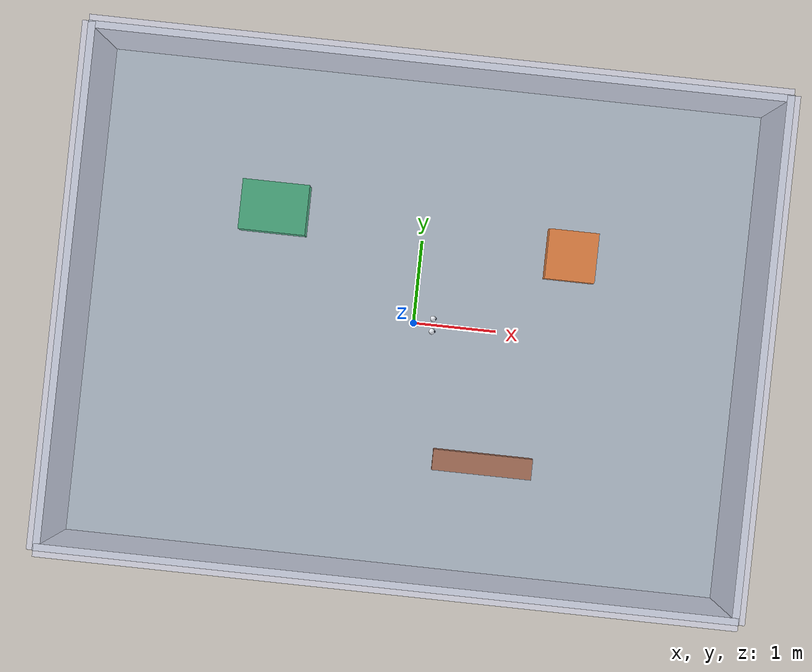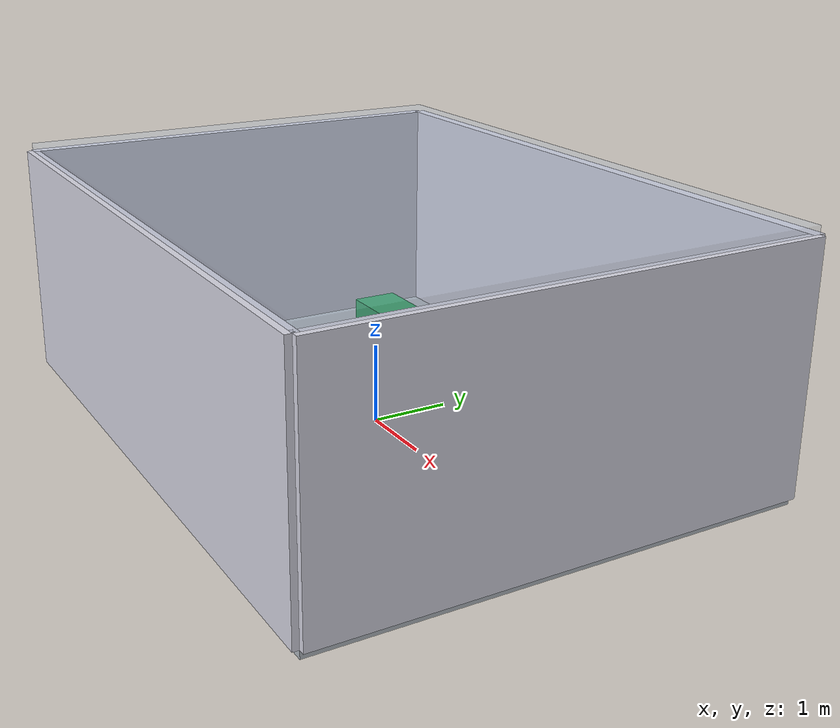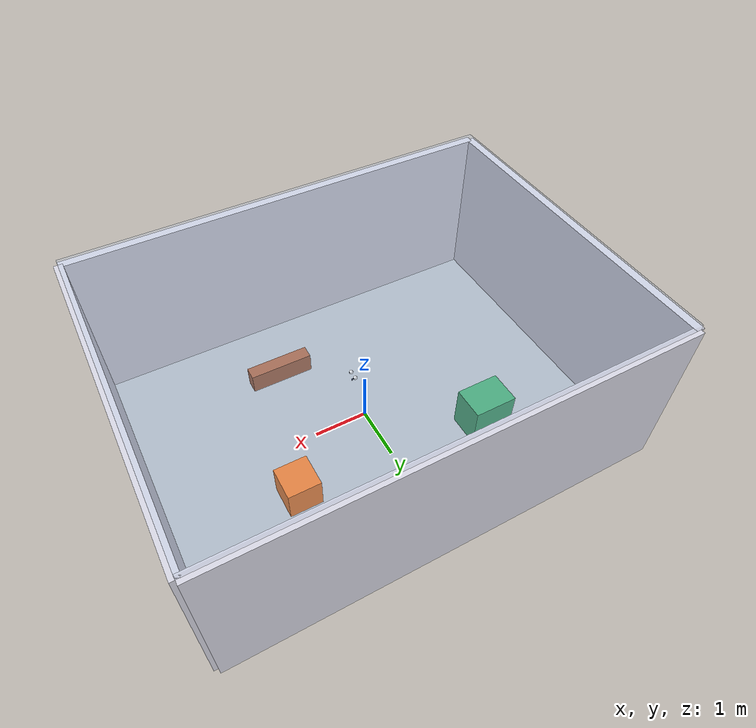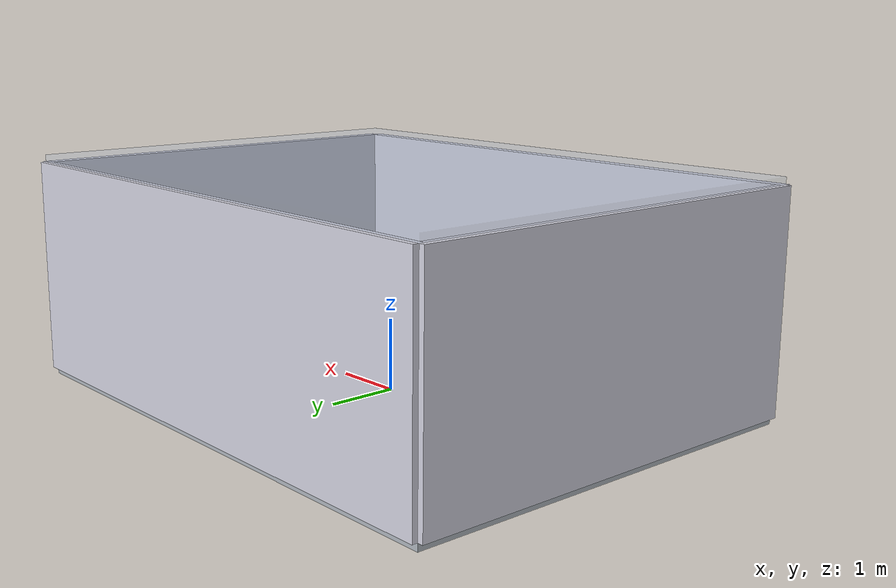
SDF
<?xml version='1.0' encoding='utf-8'?>
<sdf version="1.8">
  <world name="ghost_room">
    <physics name="default" type="ignored">
      <max_step_size>0.002</max_step_size>
      <real_time_factor>1</real_time_factor>
    </physics>
    <plugin filename="ignition-gazebo-physics-system" name="ignition::gazebo::systems::Physics" />
    <plugin filename="ignition-gazebo-user-commands-system" name="ignition::gazebo::systems::UserCommands" />
    <plugin filename="ignition-gazebo-scene-broadcaster-system" name="ignition::gazebo::systems::SceneBroadcaster" />
    <light type="directional" name="sun">
      <pose>0 0 8 0 0 0</pose>
      <diffuse>0.9 0.9 0.9 1</diffuse>
      <direction>-0.5 -0.2 -1</direction>
      <cast_shadows>false</cast_shadows>
    </light>
    <scene>
      <ambient>0.5 0.5 0.5 1</ambient>
      <background>0.12 0.16 0.22 1</background>
    </scene>
    <model name="floor">
      <static>true</static>
      <pose>0 0 -0.05 0 0 0</pose>
      <link name="link">
        <collision name="collision">
          <geometry>
            <box>
              <size>8 6 0.1</size>
            </box>
          </geometry>
        </collision>
        <visual name="visual">
          <geometry>
            <box>
              <size>8 6 0.1</size>
            </box>
          </geometry>
          <material>
            <ambient>0.7 0.73 0.76 1</ambient>
            <diffuse>0.7 0.73 0.76 1</diffuse>
          </material>
        </visual>
      </link>
    </model>
    <model name="north">
      <static>true</static>
      <pose>0 3 1.5 0 0 0</pose>
      <link name="link">
        <collision name="collision">
          <geometry>
            <box>
              <size>8 0.15 3.0</size>
            </box>
          </geometry>
        </collision>
        <visual name="visual">
          <geometry>
            <box>
              <size>8 0.15 3.0</size>
            </box>
          </geometry>
          <material>
            <ambient>0.85 0.85 0.9 1</ambient>
            <diffuse>0.85 0.85 0.9 1</diffuse>
          </material>
        </visual>
      </link>
    </model>
    <model name="south">
      <static>true</static>
      <pose>0 -3 1.5 0 0 0</pose>
      <link name="link">
        <collision name="collision">
          <geometry>
            <box>
              <size>8 0.15 3.0</size>
            </box>
          </geometry>
        </collision>
        <visual name="visual">
          <geometry>
            <box>
              <size>8 0.15 3.0</size>
            </box>
          </geometry>
          <material>
            <ambient>0.85 0.85 0.9 1</ambient>
            <diffuse>0.85 0.85 0.9 1</diffuse>
          </material>
        </visual>
      </link>
    </model>
    <model name="east">
      <static>true</static>
      <pose>4 0 1.5 0 0 0</pose>
      <link name="link">
        <collision name="collision">
          <geometry>
            <box>
              <size>0.15 6 3.0</size>
            </box>
          </geometry>
        </collision>
        <visual name="visual">
          <geometry>
            <box>
              <size>0.15 6 3.0</size>
            </box>
          </geometry>
          <material>
            <ambient>0.85 0.85 0.9 1</ambient>
            <diffuse>0.85 0.85 0.9 1</diffuse>
          </material>
        </visual>
      </link>
    </model>
    <model name="west">
      <static>true</static>
      <pose>-4 0 1.5 0 0 0</pose>
      <link name="link">
        <collision name="collision">
          <geometry>
            <box>
              <size>0.15 6 3.0</size>
            </box>
          </geometry>
        </collision>
        <visual name="visual">
          <geometry>
            <box>
              <size>0.15 6 3.0</size>
            </box>
          </geometry>
          <material>
            <ambient>0.85 0.85 0.9 1</ambient>
            <diffuse>0.85 0.85 0.9 1</diffuse>
          </material>
        </visual>
      </link>
    </model>
    <model name="orange_box">
      <static>true</static>
      <pose>1.8 1 0.3 0 0 0</pose>
      <link name="link">
        <collision name="collision">
          <geometry>
            <box>
              <size>0.6 0.6 0.6</size>
            </box>
          </geometry>
        </collision>
        <visual name="visual">
          <geometry>
            <box>
              <size>0.6 0.6 0.6</size>
            </box>
          </geometry>
          <material>
            <ambient>0.95 0.45 0.1 1</ambient>
            <diffuse>0.95 0.45 0.1 1</diffuse>
          </material>
        </visual>
      </link>
    </model>
    <model name="green_box">
      <static>true</static>
      <pose>-1.8 1.2 0.4 0 0 0</pose>
      <link name="link">
        <collision name="collision">
          <geometry>
            <box>
              <size>0.8 0.6 0.8</size>
            </box>
          </geometry>
        </collision>
        <visual name="visual">
          <geometry>
            <box>
              <size>0.8 0.6 0.8</size>
            </box>
          </geometry>
          <material>
            <ambient>0.2 0.65 0.4 1</ambient>
            <diffuse>0.2 0.65 0.4 1</diffuse>
          </material>
        </visual>
      </link>
    </model>
    <model name="low_barrier">
      <static>true</static>
      <pose>1 -1.6 0.2 0 0 0</pose>
      <link name="link">
        <collision name="collision">
          <geometry>
            <box>
              <size>1.2 0.25 0.4</size>
            </box>
          </geometry>
        </collision>
        <visual name="visual">
          <geometry>
            <box>
              <size>1.2 0.25 0.4</size>
            </box>
          </geometry>
          <material>
            <ambient>0.65 0.35 0.2 1</ambient>
            <diffuse>0.65 0.35 0.2 1</diffuse>
          </material>
        </visual>
      </link>
    </model>
    <plugin filename="ignition-gazebo-sensors-system" name="ignition::gazebo::systems::Sensors">
      <render_engine>ogre2</render_engine>
    </plugin>
    <gravity>0 0 0</gravity>
    <model name="ceiling">
      <static>true</static>
      <pose>0 0 3.05 0 0 0</pose>
      <link name="link">
        <collision name="collision">
          <geometry>
            <box>
              <size>8 6 0.1</size>
            </box>
          </geometry>
        </collision>
        <visual name="visual">
          <geometry>
            <box>
              <size>8 6 0.1</size>
            </box>
          </geometry>
          <material>
            <diffuse>0.7 0.8 0.95 0.08</diffuse>
            <ambient>0.7 0.8 0.95 0.08</ambient>
          </material>
          <transparency>0.92</transparency>
        </visual>
      </link>
    </model>
    <model name="ghost">
      <pose>0 0 1.2 0 0 0</pose>
      <link name="base_link">
        <gravity>false</gravity>
        <inertial>
          <mass>1.0</mass>
          <inertia>
            <ixx>0.03136</ixx>
            <iyy>0.03136</iyy>
            <izz>0.03136</izz>
            <ixy>0</ixy>
            <ixz>0</ixz>
            <iyz>0</iyz>
          </inertia>
        </inertial>
        <collision name="sphere_collision">
          <geometry>
            <sphere>
              <radius>0.28</radius>
            </sphere>
          </geometry>
        </collision>
        <visual name="ghost_body">
          <pose>0 0 0 0 0 0</pose>
          <geometry>
            <sphere>
              <radius>0.25</radius>
            </sphere>
          </geometry>
          <material>
            <ambient>0.65 0.9 1.0 0.8</ambient>
            <diffuse>0.65 0.9 1.0 0.8</diffuse>
          </material>
        </visual>
        <visual name="left_eye">
          <pose>0.225 0.075 0.05 0 0 0</pose>
          <geometry>
            <sphere>
              <radius>0.035</radius>
            </sphere>
          </geometry>
          <material>
            <ambient>1 1 1 1</ambient>
            <diffuse>1 1 1 1</diffuse>
          </material>
        </visual>
        <visual name="left_pupil">
          <pose>0.253 0.075 0.05 0 0 0</pose>
          <geometry>
            <sphere>
              <radius>0.016</radius>
            </sphere>
          </geometry>
          <material>
            <ambient>0.025 0.04 0.10 1</ambient>
            <diffuse>0.025 0.04 0.10 1</diffuse>
          </material>
        </visual>
        <visual name="right_eye">
          <pose>0.225 -0.075 0.05 0 0 0</pose>
          <geometry>
            <sphere>
              <radius>0.035</radius>
            </sphere>
          </geometry>
          <material>
            <ambient>1 1 1 1</ambient>
            <diffuse>1 1 1 1</diffuse>
          </material>
        </visual>
        <visual name="right_pupil">
          <pose>0.253 -0.075 0.05 0 0 0</pose>
          <geometry>
            <sphere>
              <radius>0.016</radius>
            </sphere>
          </geometry>
          <material>
            <ambient>0.025 0.04 0.10 1</ambient>
            <diffuse>0.025 0.04 0.10 1</diffuse>
          </material>
        </visual>
        <visual name="mouth">
          <pose>0.245 0 -0.065 0 0 0</pose>
          <geometry>
            <sphere>
              <radius>0.018</radius>
            </sphere>
          </geometry>
          <material>
            <ambient>0.06 0.10 0.20 1</ambient>
            <diffuse>0.06 0.10 0.20 1</diffuse>
          </material>
        </visual>
        <sensor name="rgbd" type="rgbd_camera">
          <pose>0.29 0 0 0 0 0</pose>
          <topic>/camera</topic>
          <always_on>true</always_on>
          <update_rate>5</update_rate>
          <camera>
            <horizontal_fov>1.0471975512</horizontal_fov>
            <optical_frame_id>camera_optical_frame</optical_frame_id>
            <image>
              <width>320</width>
              <height>240</height>
              <format>R8G8B8</format>
            </image>
            <clip>
              <near>0.1</near>
              <far>8.0</far>
            </clip>
          </camera>
        </sensor>
      </link>
      <plugin filename="ignition-gazebo-velocity-control-system" name="ignition::gazebo::systems::VelocityControl">
        <topic>/model/ghost/cmd_vel</topic>
        <initial_linear>0 0 0</initial_linear>
        <initial_angular>0 0 0</initial_angular>
      </plugin>
      <plugin filename="ignition-gazebo-pose-publisher-system" name="ignition::gazebo::systems::PosePublisher">
        <publish_link_pose>true</publish_link_pose>
        <publish_model_pose>true</publish_model_pose>
        <publish_nested_model_pose>true</publish_nested_model_pose>
        <use_pose_vector_msg>true</use_pose_vector_msg>
        <update_frequency>50</update_frequency>
      </plugin>
    </model>
  </world>
</sdf>
